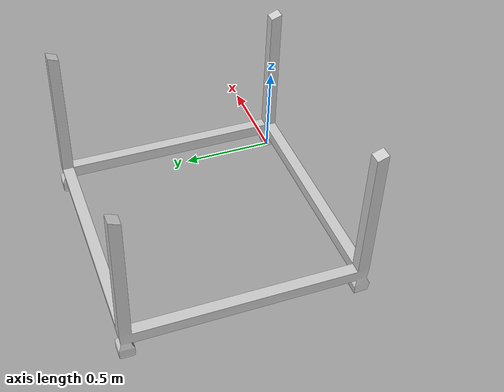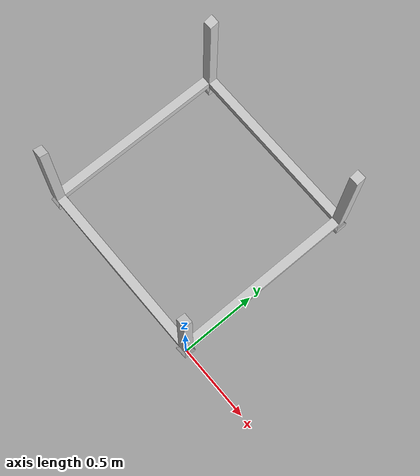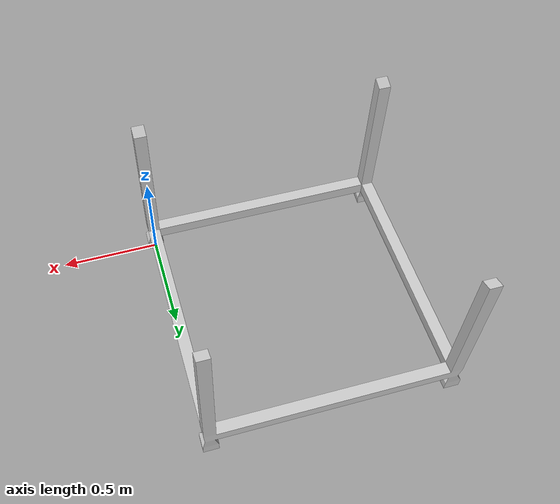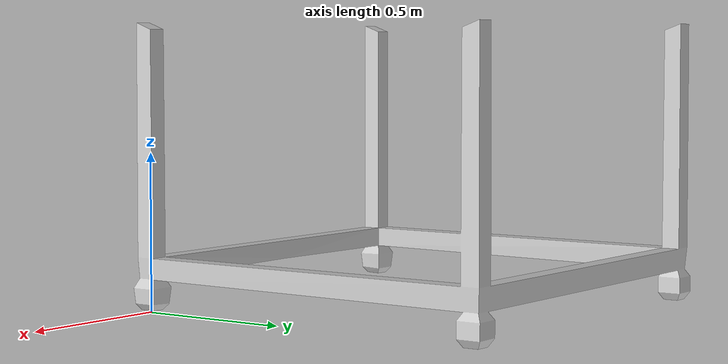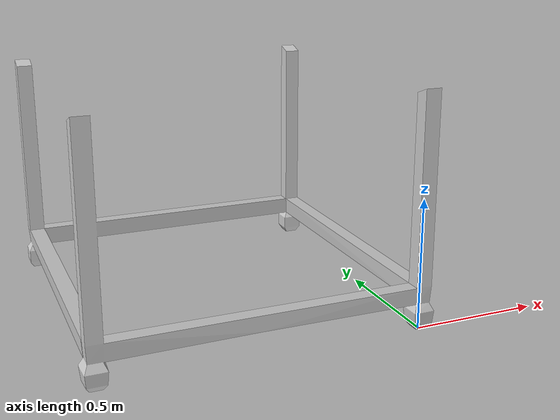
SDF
<?xml version="1.0" ?>
<sdf version="1.6">
  <model name="gestell">
    <static>true</static>
    <link name="link">
      <collision name="collision">
        <geometry>
          <mesh>
            <scale>1.2 1.2 1.2</scale>
            <uri>model://gestell/meshes/gestell.dae</uri>
          </mesh>
        </geometry>
      </collision>
      <visual name="visual">
        <geometry>
          <mesh>
            <scale>1.2 1.2 1.2</scale>
            <uri>model://gestell/meshes/gestell.dae</uri>
          </mesh>
        </geometry>
      </visual>
    </link>
  </model>
</sdf>
